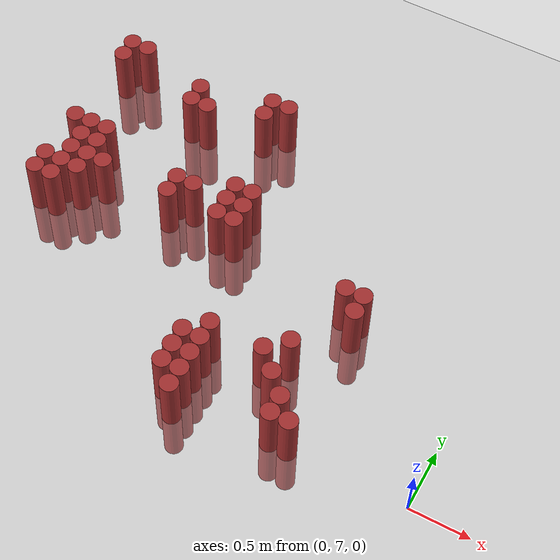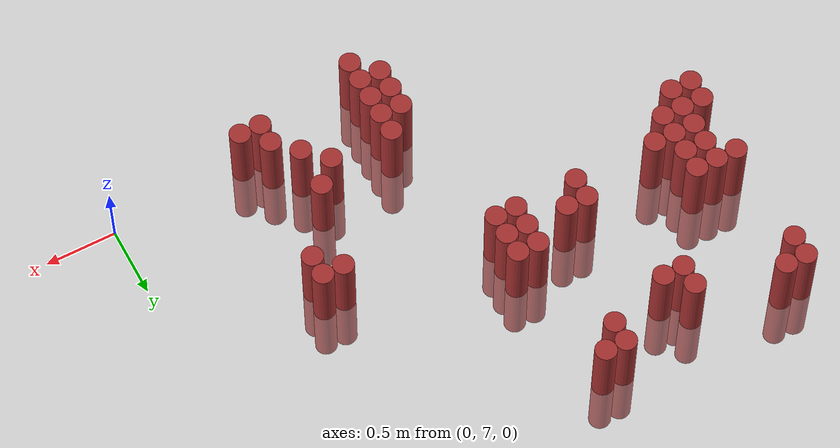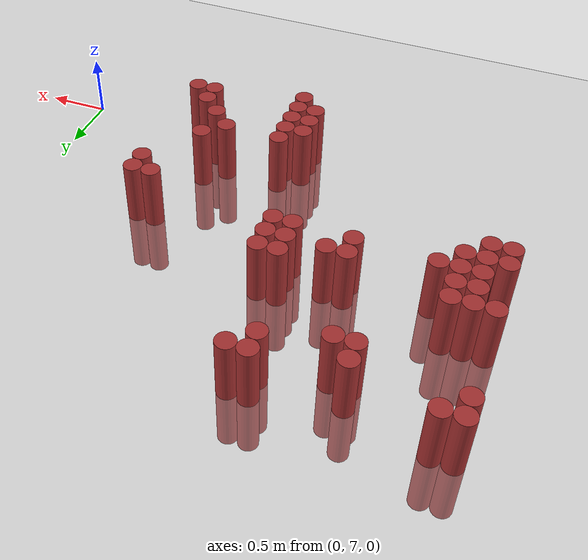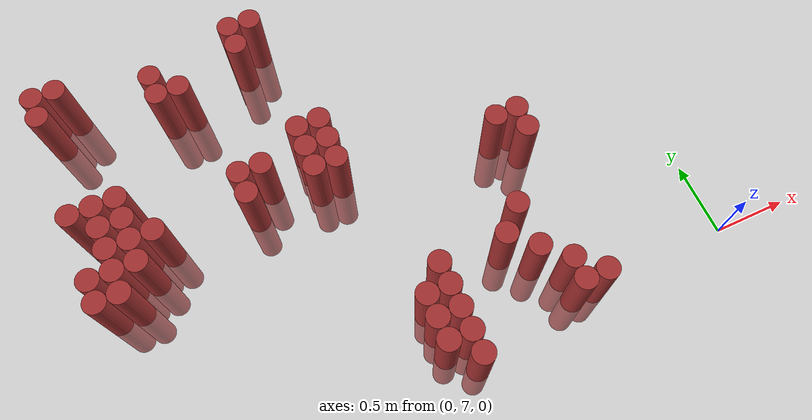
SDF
<sdf version="1.6">
 <world name="default">
  <model name="ground_plane">
   <static>1</static>
   <link name="link">
    <collision name="collision">
     <geometry><plane><normal>0 0 1</normal><size>100 100</size></plane></geometry>
     <surface><friction><ode><mu>100</mu><mu2>50</mu2></ode></friction></surface>
    </collision>
    <visual name="visual">
     <cast_shadows>0</cast_shadows>
     <geometry><plane><normal>0 0 1</normal><size>100 100</size></plane></geometry>
     <material>
      <script><uri>file://media/materials/scripts/gazebo.material</uri><name>Gazebo/Grey</name></script>
     </material>
    </visual>
   </link>
  </model>
  <model name="unit_cylinder_159">
   <static>1</static>
   <pose>-3.825000 8.025000 0.000000 0.000000 0.000000 0.000000</pose>
   <link name="link">
    <inertial>
     <mass>1</mass>
     <inertia><ixx>0.145833</ixx><ixy>0</ixy><ixz>0</ixz><iyy>0.145833</iyy><iyz>0</iyz><izz>0.125</izz></inertia>
    </inertial>
    <collision name="collision">
     <geometry><cylinder><radius>0.075000</radius><length>1</length></cylinder></geometry>
    </collision>
    <visual name="visual">
     <geometry><cylinder><radius>0.075000</radius><length>1</length></cylinder></geometry>
     <material>
      <ambient>0.648000 0.192000 0.192000 1</ambient>
      <diffuse>0.648000 0.192000 0.192000 1</diffuse>
     </material>
     <material>
      <script><name>Gazebo/Grey</name><uri>file://media/materials/scripts/gazebo.material</uri></script>
     </material>
    </visual>
   </link>
  </model>
  <model name="unit_cylinder_160">
   <static>1</static>
   <pose>-3.825000 8.175000 0.000000 0.000000 0.000000 0.000000</pose>
   <link name="link">
    <inertial>
     <mass>1</mass>
     <inertia><ixx>0.145833</ixx><ixy>0</ixy><ixz>0</ixz><iyy>0.145833</iyy><iyz>0</iyz><izz>0.125</izz></inertia>
    </inertial>
    <collision name="collision">
     <geometry><cylinder><radius>0.075000</radius><length>1</length></cylinder></geometry>
    </collision>
    <visual name="visual">
     <geometry><cylinder><radius>0.075000</radius><length>1</length></cylinder></geometry>
     <material>
      <ambient>0.648000 0.192000 0.192000 1</ambient>
      <diffuse>0.648000 0.192000 0.192000 1</diffuse>
     </material>
     <material>
      <script><name>Gazebo/Grey</name><uri>file://media/materials/scripts/gazebo.material</uri></script>
     </material>
    </visual>
   </link>
  </model>
  <model name="unit_cylinder_161">
   <static>1</static>
   <pose>-3.825000 8.625000 0.000000 0.000000 0.000000 0.000000</pose>
   <link name="link">
    <inertial>
     <mass>1</mass>
     <inertia><ixx>0.145833</ixx><ixy>0</ixy><ixz>0</ixz><iyy>0.145833</iyy><iyz>0</iyz><izz>0.125</izz></inertia>
    </inertial>
    <collision name="collision">
     <geometry><cylinder><radius>0.075000</radius><length>1</length></cylinder></geometry>
    </collision>
    <visual name="visual">
     <geometry><cylinder><radius>0.075000</radius><length>1</length></cylinder></geometry>
     <material>
      <ambient>0.648000 0.192000 0.192000 1</ambient>
      <diffuse>0.648000 0.192000 0.192000 1</diffuse>
     </material>
     <material>
      <script><name>Gazebo/Grey</name><uri>file://media/materials/scripts/gazebo.material</uri></script>
     </material>
    </visual>
   </link>
  </model>
  <model name="unit_cylinder_162">
   <static>1</static>
   <pose>-3.825000 9.375000 0.000000 0.000000 0.000000 0.000000</pose>
   <link name="link">
    <inertial>
     <mass>1</mass>
     <inertia><ixx>0.145833</ixx><ixy>0</ixy><ixz>0</ixz><iyy>0.145833</iyy><iyz>0</iyz><izz>0.125</izz></inertia>
    </inertial>
    <collision name="collision">
     <geometry><cylinder><radius>0.075000</radius><length>1</length></cylinder></geometry>
    </collision>
    <visual name="visual">
     <geometry><cylinder><radius>0.075000</radius><length>1</length></cylinder></geometry>
     <material>
      <ambient>0.648000 0.192000 0.192000 1</ambient>
      <diffuse>0.648000 0.192000 0.192000 1</diffuse>
     </material>
     <material>
      <script><name>Gazebo/Grey</name><uri>file://media/materials/scripts/gazebo.material</uri></script>
     </material>
    </visual>
   </link>
  </model>
  <model name="unit_cylinder_163">
   <static>1</static>
   <pose>-3.825000 9.525000 0.000000 0.000000 0.000000 0.000000</pose>
   <link name="link">
    <inertial>
     <mass>1</mass>
     <inertia><ixx>0.145833</ixx><ixy>0</ixy><ixz>0</ixz><iyy>0.145833</iyy><iyz>0</iyz><izz>0.125</izz></inertia>
    </inertial>
    <collision name="collision">
     <geometry><cylinder><radius>0.075000</radius><length>1</length></cylinder></geometry>
    </collision>
    <visual name="visual">
     <geometry><cylinder><radius>0.075000</radius><length>1</length></cylinder></geometry>
     <material>
      <ambient>0.648000 0.192000 0.192000 1</ambient>
      <diffuse>0.648000 0.192000 0.192000 1</diffuse>
     </material>
     <material>
      <script><name>Gazebo/Grey</name><uri>file://media/materials/scripts/gazebo.material</uri></script>
     </material>
    </visual>
   </link>
  </model>
  <model name="unit_cylinder_165">
   <static>1</static>
   <pose>-3.675000 8.025000 0.000000 0.000000 0.000000 0.000000</pose>
   <link name="link">
    <inertial>
     <mass>1</mass>
     <inertia><ixx>0.145833</ixx><ixy>0</ixy><ixz>0</ixz><iyy>0.145833</iyy><iyz>0</iyz><izz>0.125</izz></inertia>
    </inertial>
    <collision name="collision">
     <geometry><cylinder><radius>0.075000</radius><length>1</length></cylinder></geometry>
    </collision>
    <visual name="visual">
     <geometry><cylinder><radius>0.075000</radius><length>1</length></cylinder></geometry>
     <material>
      <ambient>0.648000 0.192000 0.192000 1</ambient>
      <diffuse>0.648000 0.192000 0.192000 1</diffuse>
     </material>
     <material>
      <script><name>Gazebo/Grey</name><uri>file://media/materials/scripts/gazebo.material</uri></script>
     </material>
    </visual>
   </link>
  </model>
  <model name="unit_cylinder_166">
   <static>1</static>
   <pose>-3.675000 8.175000 0.000000 0.000000 0.000000 0.000000</pose>
   <link name="link">
    <inertial>
     <mass>1</mass>
     <inertia><ixx>0.145833</ixx><ixy>0</ixy><ixz>0</ixz><iyy>0.145833</iyy><iyz>0</iyz><izz>0.125</izz></inertia>
    </inertial>
    <collision name="collision">
     <geometry><cylinder><radius>0.075000</radius><length>1</length></cylinder></geometry>
    </collision>
    <visual name="visual">
     <geometry><cylinder><radius>0.075000</radius><length>1</length></cylinder></geometry>
     <material>
      <ambient>0.648000 0.192000 0.192000 1</ambient>
      <diffuse>0.648000 0.192000 0.192000 1</diffuse>
     </material>
     <material>
      <script><name>Gazebo/Grey</name><uri>file://media/materials/scripts/gazebo.material</uri></script>
     </material>
    </visual>
   </link>
  </model>
  <model name="unit_cylinder_167">
   <static>1</static>
   <pose>-3.675000 8.325000 0.000000 0.000000 0.000000 0.000000</pose>
   <link name="link">
    <inertial>
     <mass>1</mass>
     <inertia><ixx>0.145833</ixx><ixy>0</ixy><ixz>0</ixz><iyy>0.145833</iyy><iyz>0</iyz><izz>0.125</izz></inertia>
    </inertial>
    <collision name="collision">
     <geometry><cylinder><radius>0.075000</radius><length>1</length></cylinder></geometry>
    </collision>
    <visual name="visual">
     <geometry><cylinder><radius>0.075000</radius><length>1</length></cylinder></geometry>
     <material>
      <ambient>0.648000 0.192000 0.192000 1</ambient>
      <diffuse>0.648000 0.192000 0.192000 1</diffuse>
     </material>
     <material>
      <script><name>Gazebo/Grey</name><uri>file://media/materials/scripts/gazebo.material</uri></script>
     </material>
    </visual>
   </link>
  </model>
  <model name="unit_cylinder_168">
   <static>1</static>
   <pose>-3.675000 8.475000 0.000000 0.000000 0.000000 0.000000</pose>
   <link name="link">
    <inertial>
     <mass>1</mass>
     <inertia><ixx>0.145833</ixx><ixy>0</ixy><ixz>0</ixz><iyy>0.145833</iyy><iyz>0</iyz><izz>0.125</izz></inertia>
    </inertial>
    <collision name="collision">
     <geometry><cylinder><radius>0.075000</radius><length>1</length></cylinder></geometry>
    </collision>
    <visual name="visual">
     <geometry><cylinder><radius>0.075000</radius><length>1</length></cylinder></geometry>
     <material>
      <ambient>0.648000 0.192000 0.192000 1</ambient>
      <diffuse>0.648000 0.192000 0.192000 1</diffuse>
     </material>
     <material>
      <script><name>Gazebo/Grey</name><uri>file://media/materials/scripts/gazebo.material</uri></script>
     </material>
    </visual>
   </link>
  </model>
  <model name="unit_cylinder_169">
   <static>1</static>
   <pose>-3.675000 8.625000 0.000000 0.000000 0.000000 0.000000</pose>
   <link name="link">
    <inertial>
     <mass>1</mass>
     <inertia><ixx>0.145833</ixx><ixy>0</ixy><ixz>0</ixz><iyy>0.145833</iyy><iyz>0</iyz><izz>0.125</izz></inertia>
    </inertial>
    <collision name="collision">
     <geometry><cylinder><radius>0.075000</radius><length>1</length></cylinder></geometry>
    </collision>
    <visual name="visual">
     <geometry><cylinder><radius>0.075000</radius><length>1</length></cylinder></geometry>
     <material>
      <ambient>0.648000 0.192000 0.192000 1</ambient>
      <diffuse>0.648000 0.192000 0.192000 1</diffuse>
     </material>
     <material>
      <script><name>Gazebo/Grey</name><uri>file://media/materials/scripts/gazebo.material</uri></script>
     </material>
    </visual>
   </link>
  </model>
  <model name="unit_cylinder_170">
   <static>1</static>
   <pose>-3.675000 9.525000 0.000000 0.000000 0.000000 0.000000</pose>
   <link name="link">
    <inertial>
     <mass>1</mass>
     <inertia><ixx>0.145833</ixx><ixy>0</ixy><ixz>0</ixz><iyy>0.145833</iyy><iyz>0</iyz><izz>0.125</izz></inertia>
    </inertial>
    <collision name="collision">
     <geometry><cylinder><radius>0.075000</radius><length>1</length></cylinder></geometry>
    </collision>
    <visual name="visual">
     <geometry><cylinder><radius>0.075000</radius><length>1</length></cylinder></geometry>
     <material>
      <ambient>0.648000 0.192000 0.192000 1</ambient>
      <diffuse>0.648000 0.192000 0.192000 1</diffuse>
     </material>
     <material>
      <script><name>Gazebo/Grey</name><uri>file://media/materials/scripts/gazebo.material</uri></script>
     </material>
    </visual>
   </link>
  </model>
  <model name="unit_cylinder_173">
   <static>1</static>
   <pose>-3.525000 8.175000 0.000000 0.000000 0.000000 0.000000</pose>
   <link name="link">
    <inertial>
     <mass>1</mass>
     <inertia><ixx>0.145833</ixx><ixy>0</ixy><ixz>0</ixz><iyy>0.145833</iyy><iyz>0</iyz><izz>0.125</izz></inertia>
    </inertial>
    <collision name="collision">
     <geometry><cylinder><radius>0.075000</radius><length>1</length></cylinder></geometry>
    </collision>
    <visual name="visual">
     <geometry><cylinder><radius>0.075000</radius><length>1</length></cylinder></geometry>
     <material>
      <ambient>0.648000 0.192000 0.192000 1</ambient>
      <diffuse>0.648000 0.192000 0.192000 1</diffuse>
     </material>
     <material>
      <script><name>Gazebo/Grey</name><uri>file://media/materials/scripts/gazebo.material</uri></script>
     </material>
    </visual>
   </link>
  </model>
  <model name="unit_cylinder_174">
   <static>1</static>
   <pose>-3.525000 8.325000 0.000000 0.000000 0.000000 0.000000</pose>
   <link name="link">
    <inertial>
     <mass>1</mass>
     <inertia><ixx>0.145833</ixx><ixy>0</ixy><ixz>0</ixz><iyy>0.145833</iyy><iyz>0</iyz><izz>0.125</izz></inertia>
    </inertial>
    <collision name="collision">
     <geometry><cylinder><radius>0.075000</radius><length>1</length></cylinder></geometry>
    </collision>
    <visual name="visual">
     <geometry><cylinder><radius>0.075000</radius><length>1</length></cylinder></geometry>
     <material>
      <ambient>0.648000 0.192000 0.192000 1</ambient>
      <diffuse>0.648000 0.192000 0.192000 1</diffuse>
     </material>
     <material>
      <script><name>Gazebo/Grey</name><uri>file://media/materials/scripts/gazebo.material</uri></script>
     </material>
    </visual>
   </link>
  </model>
  <model name="unit_cylinder_175">
   <static>1</static>
   <pose>-3.525000 8.475000 0.000000 0.000000 0.000000 0.000000</pose>
   <link name="link">
    <inertial>
     <mass>1</mass>
     <inertia><ixx>0.145833</ixx><ixy>0</ixy><ixz>0</ixz><iyy>0.145833</iyy><iyz>0</iyz><izz>0.125</izz></inertia>
    </inertial>
    <collision name="collision">
     <geometry><cylinder><radius>0.075000</radius><length>1</length></cylinder></geometry>
    </collision>
    <visual name="visual">
     <geometry><cylinder><radius>0.075000</radius><length>1</length></cylinder></geometry>
     <material>
      <ambient>0.648000 0.192000 0.192000 1</ambient>
      <diffuse>0.648000 0.192000 0.192000 1</diffuse>
     </material>
     <material>
      <script><name>Gazebo/Grey</name><uri>file://media/materials/scripts/gazebo.material</uri></script>
     </material>
    </visual>
   </link>
  </model>
  <model name="unit_cylinder_176">
   <static>1</static>
   <pose>-3.525000 8.625000 0.000000 0.000000 0.000000 0.000000</pose>
   <link name="link">
    <inertial>
     <mass>1</mass>
     <inertia><ixx>0.145833</ixx><ixy>0</ixy><ixz>0</ixz><iyy>0.145833</iyy><iyz>0</iyz><izz>0.125</izz></inertia>
    </inertial>
    <collision name="collision">
     <geometry><cylinder><radius>0.075000</radius><length>1</length></cylinder></geometry>
    </collision>
    <visual name="visual">
     <geometry><cylinder><radius>0.075000</radius><length>1</length></cylinder></geometry>
     <material>
      <ambient>0.648000 0.192000 0.192000 1</ambient>
      <diffuse>0.648000 0.192000 0.192000 1</diffuse>
     </material>
     <material>
      <script><name>Gazebo/Grey</name><uri>file://media/materials/scripts/gazebo.material</uri></script>
     </material>
    </visual>
   </link>
  </model>
  <model name="unit_cylinder_177">
   <static>1</static>
   <pose>-3.375000 8.325000 0.000000 0.000000 0.000000 0.000000</pose>
   <link name="link">
    <inertial>
     <mass>1</mass>
     <inertia><ixx>0.145833</ixx><ixy>0</ixy><ixz>0</ixz><iyy>0.145833</iyy><iyz>0</iyz><izz>0.125</izz></inertia>
    </inertial>
    <collision name="collision">
     <geometry><cylinder><radius>0.075000</radius><length>1</length></cylinder></geometry>
    </collision>
    <visual name="visual">
     <geometry><cylinder><radius>0.075000</radius><length>1</length></cylinder></geometry>
     <material>
      <ambient>0.648000 0.192000 0.192000 1</ambient>
      <diffuse>0.648000 0.192000 0.192000 1</diffuse>
     </material>
     <material>
      <script><name>Gazebo/Grey</name><uri>file://media/materials/scripts/gazebo.material</uri></script>
     </material>
    </visual>
   </link>
  </model>
  <model name="unit_cylinder_178">
   <static>1</static>
   <pose>-3.075000 9.225000 0.000000 0.000000 0.000000 0.000000</pose>
   <link name="link">
    <inertial>
     <mass>1</mass>
     <inertia><ixx>0.145833</ixx><ixy>0</ixy><ixz>0</ixz><iyy>0.145833</iyy><iyz>0</iyz><izz>0.125</izz></inertia>
    </inertial>
    <collision name="collision">
     <geometry><cylinder><radius>0.075000</radius><length>1</length></cylinder></geometry>
    </collision>
    <visual name="visual">
     <geometry><cylinder><radius>0.075000</radius><length>1</length></cylinder></geometry>
     <material>
      <ambient>0.648000 0.192000 0.192000 1</ambient>
      <diffuse>0.648000 0.192000 0.192000 1</diffuse>
     </material>
     <material>
      <script><name>Gazebo/Grey</name><uri>file://media/materials/scripts/gazebo.material</uri></script>
     </material>
    </visual>
   </link>
  </model>
  <model name="unit_cylinder_179">
   <static>1</static>
   <pose>-3.075000 9.375000 0.000000 0.000000 0.000000 0.000000</pose>
   <link name="link">
    <inertial>
     <mass>1</mass>
     <inertia><ixx>0.145833</ixx><ixy>0</ixy><ixz>0</ixz><iyy>0.145833</iyy><iyz>0</iyz><izz>0.125</izz></inertia>
    </inertial>
    <collision name="collision">
     <geometry><cylinder><radius>0.075000</radius><length>1</length></cylinder></geometry>
    </collision>
    <visual name="visual">
     <geometry><cylinder><radius>0.075000</radius><length>1</length></cylinder></geometry>
     <material>
      <ambient>0.648000 0.192000 0.192000 1</ambient>
      <diffuse>0.648000 0.192000 0.192000 1</diffuse>
     </material>
     <material>
      <script><name>Gazebo/Grey</name><uri>file://media/materials/scripts/gazebo.material</uri></script>
     </material>
    </visual>
   </link>
  </model>
  <model name="unit_cylinder_180">
   <static>1</static>
   <pose>-2.925000 9.225000 0.000000 0.000000 0.000000 0.000000</pose>
   <link name="link">
    <inertial>
     <mass>1</mass>
     <inertia><ixx>0.145833</ixx><ixy>0</ixy><ixz>0</ixz><iyy>0.145833</iyy><iyz>0</iyz><izz>0.125</izz></inertia>
    </inertial>
    <collision name="collision">
     <geometry><cylinder><radius>0.075000</radius><length>1</length></cylinder></geometry>
    </collision>
    <visual name="visual">
     <geometry><cylinder><radius>0.075000</radius><length>1</length></cylinder></geometry>
     <material>
      <ambient>0.648000 0.192000 0.192000 1</ambient>
      <diffuse>0.648000 0.192000 0.192000 1</diffuse>
     </material>
     <material>
      <script><name>Gazebo/Grey</name><uri>file://media/materials/scripts/gazebo.material</uri></script>
     </material>
    </visual>
   </link>
  </model>
  <model name="unit_cylinder_181">
   <static>1</static>
   <pose>-2.775000 8.325000 0.000000 0.000000 0.000000 0.000000</pose>
   <link name="link">
    <inertial>
     <mass>1</mass>
     <inertia><ixx>0.145833</ixx><ixy>0</ixy><ixz>0</ixz><iyy>0.145833</iyy><iyz>0</iyz><izz>0.125</izz></inertia>
    </inertial>
    <collision name="collision">
     <geometry><cylinder><radius>0.075000</radius><length>1</length></cylinder></geometry>
    </collision>
    <visual name="visual">
     <geometry><cylinder><radius>0.075000</radius><length>1</length></cylinder></geometry>
     <material>
      <ambient>0.648000 0.192000 0.192000 1</ambient>
      <diffuse>0.648000 0.192000 0.192000 1</diffuse>
     </material>
     <material>
      <script><name>Gazebo/Grey</name><uri>file://media/materials/scripts/gazebo.material</uri></script>
     </material>
    </visual>
   </link>
  </model>
  <model name="unit_cylinder_182">
   <static>1</static>
   <pose>-2.775000 8.475000 0.000000 0.000000 0.000000 0.000000</pose>
   <link name="link">
    <inertial>
     <mass>1</mass>
     <inertia><ixx>0.145833</ixx><ixy>0</ixy><ixz>0</ixz><iyy>0.145833</iyy><iyz>0</iyz><izz>0.125</izz></inertia>
    </inertial>
    <collision name="collision">
     <geometry><cylinder><radius>0.075000</radius><length>1</length></cylinder></geometry>
    </collision>
    <visual name="visual">
     <geometry><cylinder><radius>0.075000</radius><length>1</length></cylinder></geometry>
     <material>
      <ambient>0.648000 0.192000 0.192000 1</ambient>
      <diffuse>0.648000 0.192000 0.192000 1</diffuse>
     </material>
     <material>
      <script><name>Gazebo/Grey</name><uri>file://media/materials/scripts/gazebo.material</uri></script>
     </material>
    </visual>
   </link>
  </model>
  <model name="unit_cylinder_183">
   <static>1</static>
   <pose>-2.625000 8.475000 0.000000 0.000000 0.000000 0.000000</pose>
   <link name="link">
    <inertial>
     <mass>1</mass>
     <inertia><ixx>0.145833</ixx><ixy>0</ixy><ixz>0</ixz><iyy>0.145833</iyy><iyz>0</iyz><izz>0.125</izz></inertia>
    </inertial>
    <collision name="collision">
     <geometry><cylinder><radius>0.075000</radius><length>1</length></cylinder></geometry>
    </collision>
    <visual name="visual">
     <geometry><cylinder><radius>0.075000</radius><length>1</length></cylinder></geometry>
     <material>
      <ambient>0.648000 0.192000 0.192000 1</ambient>
      <diffuse>0.648000 0.192000 0.192000 1</diffuse>
     </material>
     <material>
      <script><name>Gazebo/Grey</name><uri>file://media/materials/scripts/gazebo.material</uri></script>
     </material>
    </visual>
   </link>
  </model>
  <model name="unit_cylinder_184">
   <static>1</static>
   <pose>-2.475000 9.375000 0.000000 0.000000 0.000000 0.000000</pose>
   <link name="link">
    <inertial>
     <mass>1</mass>
     <inertia><ixx>0.145833</ixx><ixy>0</ixy><ixz>0</ixz><iyy>0.145833</iyy><iyz>0</iyz><izz>0.125</izz></inertia>
    </inertial>
    <collision name="collision">
     <geometry><cylinder><radius>0.075000</radius><length>1</length></cylinder></geometry>
    </collision>
    <visual name="visual">
     <geometry><cylinder><radius>0.075000</radius><length>1</length></cylinder></geometry>
     <material>
      <ambient>0.648000 0.192000 0.192000 1</ambient>
      <diffuse>0.648000 0.192000 0.192000 1</diffuse>
     </material>
     <material>
      <script><name>Gazebo/Grey</name><uri>file://media/materials/scripts/gazebo.material</uri></script>
     </material>
    </visual>
   </link>
  </model>
  <model name="unit_cylinder_185">
   <static>1</static>
   <pose>-2.475000 9.525000 0.000000 0.000000 0.000000 0.000000</pose>
   <link name="link">
    <inertial>
     <mass>1</mass>
     <inertia><ixx>0.145833</ixx><ixy>0</ixy><ixz>0</ixz><iyy>0.145833</iyy><iyz>0</iyz><izz>0.125</izz></inertia>
    </inertial>
    <collision name="collision">
     <geometry><cylinder><radius>0.075000</radius><length>1</length></cylinder></geometry>
    </collision>
    <visual name="visual">
     <geometry><cylinder><radius>0.075000</radius><length>1</length></cylinder></geometry>
     <material>
      <ambient>0.648000 0.192000 0.192000 1</ambient>
      <diffuse>0.648000 0.192000 0.192000 1</diffuse>
     </material>
     <material>
      <script><name>Gazebo/Grey</name><uri>file://media/materials/scripts/gazebo.material</uri></script>
     </material>
    </visual>
   </link>
  </model>
  <model name="unit_cylinder_186">
   <static>1</static>
   <pose>-2.325000 8.325000 0.000000 0.000000 0.000000 0.000000</pose>
   <link name="link">
    <inertial>
     <mass>1</mass>
     <inertia><ixx>0.145833</ixx><ixy>0</ixy><ixz>0</ixz><iyy>0.145833</iyy><iyz>0</iyz><izz>0.125</izz></inertia>
    </inertial>
    <collision name="collision">
     <geometry><cylinder><radius>0.075000</radius><length>1</length></cylinder></geometry>
    </collision>
    <visual name="visual">
     <geometry><cylinder><radius>0.075000</radius><length>1</length></cylinder></geometry>
     <material>
      <ambient>0.648000 0.192000 0.192000 1</ambient>
      <diffuse>0.648000 0.192000 0.192000 1</diffuse>
     </material>
     <material>
      <script><name>Gazebo/Grey</name><uri>file://media/materials/scripts/gazebo.material</uri></script>
     </material>
    </visual>
   </link>
  </model>
  <model name="unit_cylinder_187">
   <static>1</static>
   <pose>-2.325000 8.475000 0.000000 0.000000 0.000000 0.000000</pose>
   <link name="link">
    <inertial>
     <mass>1</mass>
     <inertia><ixx>0.145833</ixx><ixy>0</ixy><ixz>0</ixz><iyy>0.145833</iyy><iyz>0</iyz><izz>0.125</izz></inertia>
    </inertial>
    <collision name="collision">
     <geometry><cylinder><radius>0.075000</radius><length>1</length></cylinder></geometry>
    </collision>
    <visual name="visual">
     <geometry><cylinder><radius>0.075000</radius><length>1</length></cylinder></geometry>
     <material>
      <ambient>0.648000 0.192000 0.192000 1</ambient>
      <diffuse>0.648000 0.192000 0.192000 1</diffuse>
     </material>
     <material>
      <script><name>Gazebo/Grey</name><uri>file://media/materials/scripts/gazebo.material</uri></script>
     </material>
    </visual>
   </link>
  </model>
  <model name="unit_cylinder_188">
   <static>1</static>
   <pose>-2.325000 8.625000 0.000000 0.000000 0.000000 0.000000</pose>
   <link name="link">
    <inertial>
     <mass>1</mass>
     <inertia><ixx>0.145833</ixx><ixy>0</ixy><ixz>0</ixz><iyy>0.145833</iyy><iyz>0</iyz><izz>0.125</izz></inertia>
    </inertial>
    <collision name="collision">
     <geometry><cylinder><radius>0.075000</radius><length>1</length></cylinder></geometry>
    </collision>
    <visual name="visual">
     <geometry><cylinder><radius>0.075000</radius><length>1</length></cylinder></geometry>
     <material>
      <ambient>0.648000 0.192000 0.192000 1</ambient>
      <diffuse>0.648000 0.192000 0.192000 1</diffuse>
     </material>
     <material>
      <script><name>Gazebo/Grey</name><uri>file://media/materials/scripts/gazebo.material</uri></script>
     </material>
    </visual>
   </link>
  </model>
  <model name="unit_cylinder_189">
   <static>1</static>
   <pose>-2.325000 9.525000 0.000000 0.000000 0.000000 0.000000</pose>
   <link name="link">
    <inertial>
     <mass>1</mass>
     <inertia><ixx>0.145833</ixx><ixy>0</ixy><ixz>0</ixz><iyy>0.145833</iyy><iyz>0</iyz><izz>0.125</izz></inertia>
    </inertial>
    <collision name="collision">
     <geometry><cylinder><radius>0.075000</radius><length>1</length></cylinder></geometry>
    </collision>
    <visual name="visual">
     <geometry><cylinder><radius>0.075000</radius><length>1</length></cylinder></geometry>
     <material>
      <ambient>0.648000 0.192000 0.192000 1</ambient>
      <diffuse>0.648000 0.192000 0.192000 1</diffuse>
     </material>
     <material>
      <script><name>Gazebo/Grey</name><uri>file://media/materials/scripts/gazebo.material</uri></script>
     </material>
    </visual>
   </link>
  </model>
  <model name="unit_cylinder_190">
   <static>1</static>
   <pose>-2.175000 8.325000 0.000000 0.000000 0.000000 0.000000</pose>
   <link name="link">
    <inertial>
     <mass>1</mass>
     <inertia><ixx>0.145833</ixx><ixy>0</ixy><ixz>0</ixz><iyy>0.145833</iyy><iyz>0</iyz><izz>0.125</izz></inertia>
    </inertial>
    <collision name="collision">
     <geometry><cylinder><radius>0.075000</radius><length>1</length></cylinder></geometry>
    </collision>
    <visual name="visual">
     <geometry><cylinder><radius>0.075000</radius><length>1</length></cylinder></geometry>
     <material>
      <ambient>0.648000 0.192000 0.192000 1</ambient>
      <diffuse>0.648000 0.192000 0.192000 1</diffuse>
     </material>
     <material>
      <script><name>Gazebo/Grey</name><uri>file://media/materials/scripts/gazebo.material</uri></script>
     </material>
    </visual>
   </link>
  </model>
  <model name="unit_cylinder_191">
   <static>1</static>
   <pose>-2.175000 8.475000 0.000000 0.000000 0.000000 0.000000</pose>
   <link name="link">
    <inertial>
     <mass>1</mass>
     <inertia><ixx>0.145833</ixx><ixy>0</ixy><ixz>0</ixz><iyy>0.145833</iyy><iyz>0</iyz><izz>0.125</izz></inertia>
    </inertial>
    <collision name="collision">
     <geometry><cylinder><radius>0.075000</radius><length>1</length></cylinder></geometry>
    </collision>
    <visual name="visual">
     <geometry><cylinder><radius>0.075000</radius><length>1</length></cylinder></geometry>
     <material>
      <ambient>0.648000 0.192000 0.192000 1</ambient>
      <diffuse>0.648000 0.192000 0.192000 1</diffuse>
     </material>
     <material>
      <script><name>Gazebo/Grey</name><uri>file://media/materials/scripts/gazebo.material</uri></script>
     </material>
    </visual>
   </link>
  </model>
  <model name="unit_cylinder_192">
   <static>1</static>
   <pose>-2.175000 8.625000 0.000000 0.000000 0.000000 0.000000</pose>
   <link name="link">
    <inertial>
     <mass>1</mass>
     <inertia><ixx>0.145833</ixx><ixy>0</ixy><ixz>0</ixz><iyy>0.145833</iyy><iyz>0</iyz><izz>0.125</izz></inertia>
    </inertial>
    <collision name="collision">
     <geometry><cylinder><radius>0.075000</radius><length>1</length></cylinder></geometry>
    </collision>
    <visual name="visual">
     <geometry><cylinder><radius>0.075000</radius><length>1</length></cylinder></geometry>
     <material>
      <ambient>0.648000 0.192000 0.192000 1</ambient>
      <diffuse>0.648000 0.192000 0.192000 1</diffuse>
     </material>
     <material>
      <script><name>Gazebo/Grey</name><uri>file://media/materials/scripts/gazebo.material</uri></script>
     </material>
    </visual>
   </link>
  </model>
  <model name="unit_cylinder_193">
   <static>1</static>
   <pose>-2.025000 6.975000 0.000000 0.000000 0.000000 0.000000</pose>
   <link name="link">
    <inertial>
     <mass>1</mass>
     <inertia><ixx>0.145833</ixx><ixy>0</ixy><ixz>0</ixz><iyy>0.145833</iyy><iyz>0</iyz><izz>0.125</izz></inertia>
    </inertial>
    <collision name="collision">
     <geometry><cylinder><radius>0.075000</radius><length>1</length></cylinder></geometry>
    </collision>
    <visual name="visual">
     <geometry><cylinder><radius>0.075000</radius><length>1</length></cylinder></geometry>
     <material>
      <ambient>0.648000 0.192000 0.192000 1</ambient>
      <diffuse>0.648000 0.192000 0.192000 1</diffuse>
     </material>
     <material>
      <script><name>Gazebo/Grey</name><uri>file://media/materials/scripts/gazebo.material</uri></script>
     </material>
    </visual>
   </link>
  </model>
  <model name="unit_cylinder_194">
   <static>1</static>
   <pose>-2.025000 7.125000 0.000000 0.000000 0.000000 0.000000</pose>
   <link name="link">
    <inertial>
     <mass>1</mass>
     <inertia><ixx>0.145833</ixx><ixy>0</ixy><ixz>0</ixz><iyy>0.145833</iyy><iyz>0</iyz><izz>0.125</izz></inertia>
    </inertial>
    <collision name="collision">
     <geometry><cylinder><radius>0.075000</radius><length>1</length></cylinder></geometry>
    </collision>
    <visual name="visual">
     <geometry><cylinder><radius>0.075000</radius><length>1</length></cylinder></geometry>
     <material>
      <ambient>0.648000 0.192000 0.192000 1</ambient>
      <diffuse>0.648000 0.192000 0.192000 1</diffuse>
     </material>
     <material>
      <script><name>Gazebo/Grey</name><uri>file://media/materials/scripts/gazebo.material</uri></script>
     </material>
    </visual>
   </link>
  </model>
  <model name="unit_cylinder_195">
   <static>1</static>
   <pose>-2.025000 7.275000 0.000000 0.000000 0.000000 0.000000</pose>
   <link name="link">
    <inertial>
     <mass>1</mass>
     <inertia><ixx>0.145833</ixx><ixy>0</ixy><ixz>0</ixz><iyy>0.145833</iyy><iyz>0</iyz><izz>0.125</izz></inertia>
    </inertial>
    <collision name="collision">
     <geometry><cylinder><radius>0.075000</radius><length>1</length></cylinder></geometry>
    </collision>
    <visual name="visual">
     <geometry><cylinder><radius>0.075000</radius><length>1</length></cylinder></geometry>
     <material>
      <ambient>0.648000 0.192000 0.192000 1</ambient>
      <diffuse>0.648000 0.192000 0.192000 1</diffuse>
     </material>
     <material>
      <script><name>Gazebo/Grey</name><uri>file://media/materials/scripts/gazebo.material</uri></script>
     </material>
    </visual>
   </link>
  </model>
  <model name="unit_cylinder_196">
   <static>1</static>
   <pose>-1.875000 6.825000 0.000000 0.000000 0.000000 0.000000</pose>
   <link name="link">
    <inertial>
     <mass>1</mass>
     <inertia><ixx>0.145833</ixx><ixy>0</ixy><ixz>0</ixz><iyy>0.145833</iyy><iyz>0</iyz><izz>0.125</izz></inertia>
    </inertial>
    <collision name="collision">
     <geometry><cylinder><radius>0.075000</radius><length>1</length></cylinder></geometry>
    </collision>
    <visual name="visual">
     <geometry><cylinder><radius>0.075000</radius><length>1</length></cylinder></geometry>
     <material>
      <ambient>0.648000 0.192000 0.192000 1</ambient>
      <diffuse>0.648000 0.192000 0.192000 1</diffuse>
     </material>
     <material>
      <script><name>Gazebo/Grey</name><uri>file://media/materials/scripts/gazebo.material</uri></script>
     </material>
    </visual>
   </link>
  </model>
  <model name="unit_cylinder_197">
   <static>1</static>
   <pose>-1.875000 6.975000 0.000000 0.000000 0.000000 0.000000</pose>
   <link name="link">
    <inertial>
     <mass>1</mass>
     <inertia><ixx>0.145833</ixx><ixy>0</ixy><ixz>0</ixz><iyy>0.145833</iyy><iyz>0</iyz><izz>0.125</izz></inertia>
    </inertial>
    <collision name="collision">
     <geometry><cylinder><radius>0.075000</radius><length>1</length></cylinder></geometry>
    </collision>
    <visual name="visual">
     <geometry><cylinder><radius>0.075000</radius><length>1</length></cylinder></geometry>
     <material>
      <ambient>0.648000 0.192000 0.192000 1</ambient>
      <diffuse>0.648000 0.192000 0.192000 1</diffuse>
     </material>
     <material>
      <script><name>Gazebo/Grey</name><uri>file://media/materials/scripts/gazebo.material</uri></script>
     </material>
    </visual>
   </link>
  </model>
  <model name="unit_cylinder_198">
   <static>1</static>
   <pose>-1.875000 7.125000 0.000000 0.000000 0.000000 0.000000</pose>
   <link name="link">
    <inertial>
     <mass>1</mass>
     <inertia><ixx>0.145833</ixx><ixy>0</ixy><ixz>0</ixz><iyy>0.145833</iyy><iyz>0</iyz><izz>0.125</izz></inertia>
    </inertial>
    <collision name="collision">
     <geometry><cylinder><radius>0.075000</radius><length>1</length></cylinder></geometry>
    </collision>
    <visual name="visual">
     <geometry><cylinder><radius>0.075000</radius><length>1</length></cylinder></geometry>
     <material>
      <ambient>0.648000 0.192000 0.192000 1</ambient>
      <diffuse>0.648000 0.192000 0.192000 1</diffuse>
     </material>
     <material>
      <script><name>Gazebo/Grey</name><uri>file://media/materials/scripts/gazebo.material</uri></script>
     </material>
    </visual>
   </link>
  </model>
  <model name="unit_cylinder_199">
   <static>1</static>
   <pose>-1.875000 7.275000 0.000000 0.000000 0.000000 0.000000</pose>
   <link name="link">
    <inertial>
     <mass>1</mass>
     <inertia><ixx>0.145833</ixx><ixy>0</ixy><ixz>0</ixz><iyy>0.145833</iyy><iyz>0</iyz><izz>0.125</izz></inertia>
    </inertial>
    <collision name="collision">
     <geometry><cylinder><radius>0.075000</radius><length>1</length></cylinder></geometry>
    </collision>
    <visual name="visual">
     <geometry><cylinder><radius>0.075000</radius><length>1</length></cylinder></geometry>
     <material>
      <ambient>0.648000 0.192000 0.192000 1</ambient>
      <diffuse>0.648000 0.192000 0.192000 1</diffuse>
     </material>
     <material>
      <script><name>Gazebo/Grey</name><uri>file://media/materials/scripts/gazebo.material</uri></script>
     </material>
    </visual>
   </link>
  </model>
  <model name="unit_cylinder_200">
   <static>1</static>
   <pose>-1.875000 7.425000 0.000000 0.000000 0.000000 0.000000</pose>
   <link name="link">
    <inertial>
     <mass>1</mass>
     <inertia><ixx>0.145833</ixx><ixy>0</ixy><ixz>0</ixz><iyy>0.145833</iyy><iyz>0</iyz><izz>0.125</izz></inertia>
    </inertial>
    <collision name="collision">
     <geometry><cylinder><radius>0.075000</radius><length>1</length></cylinder></geometry>
    </collision>
    <visual name="visual">
     <geometry><cylinder><radius>0.075000</radius><length>1</length></cylinder></geometry>
     <material>
      <ambient>0.648000 0.192000 0.192000 1</ambient>
      <diffuse>0.648000 0.192000 0.192000 1</diffuse>
     </material>
     <material>
      <script><name>Gazebo/Grey</name><uri>file://media/materials/scripts/gazebo.material</uri></script>
     </material>
    </visual>
   </link>
  </model>
  <model name="unit_cylinder_204">
   <static>1</static>
   <pose>-1.425000 7.425000 0.000000 0.000000 0.000000 0.000000</pose>
   <link name="link">
    <inertial>
     <mass>1</mass>
     <inertia><ixx>0.145833</ixx><ixy>0</ixy><ixz>0</ixz><iyy>0.145833</iyy><iyz>0</iyz><izz>0.125</izz></inertia>
    </inertial>
    <collision name="collision">
     <geometry><cylinder><radius>0.075000</radius><length>1</length></cylinder></geometry>
    </collision>
    <visual name="visual">
     <geometry><cylinder><radius>0.075000</radius><length>1</length></cylinder></geometry>
     <material>
      <ambient>0.648000 0.192000 0.192000 1</ambient>
      <diffuse>0.648000 0.192000 0.192000 1</diffuse>
     </material>
     <material>
      <script><name>Gazebo/Grey</name><uri>file://media/materials/scripts/gazebo.material</uri></script>
     </material>
    </visual>
   </link>
  </model>
  <model name="unit_cylinder_206">
   <static>1</static>
   <pose>-1.275000 7.275000 0.000000 0.000000 0.000000 0.000000</pose>
   <link name="link">
    <inertial>
     <mass>1</mass>
     <inertia><ixx>0.145833</ixx><ixy>0</ixy><ixz>0</ixz><iyy>0.145833</iyy><iyz>0</iyz><izz>0.125</izz></inertia>
    </inertial>
    <collision name="collision">
     <geometry><cylinder><radius>0.075000</radius><length>1</length></cylinder></geometry>
    </collision>
    <visual name="visual">
     <geometry><cylinder><radius>0.075000</radius><length>1</length></cylinder></geometry>
     <material>
      <ambient>0.648000 0.192000 0.192000 1</ambient>
      <diffuse>0.648000 0.192000 0.192000 1</diffuse>
     </material>
     <material>
      <script><name>Gazebo/Grey</name><uri>file://media/materials/scripts/gazebo.material</uri></script>
     </material>
    </visual>
   </link>
  </model>
  <model name="unit_cylinder_207">
   <static>1</static>
   <pose>-1.275000 7.575000 0.000000 0.000000 0.000000 0.000000</pose>
   <link name="link">
    <inertial>
     <mass>1</mass>
     <inertia><ixx>0.145833</ixx><ixy>0</ixy><ixz>0</ixz><iyy>0.145833</iyy><iyz>0</iyz><izz>0.125</izz></inertia>
    </inertial>
    <collision name="collision">
     <geometry><cylinder><radius>0.075000</radius><length>1</length></cylinder></geometry>
    </collision>
    <visual name="visual">
     <geometry><cylinder><radius>0.075000</radius><length>1</length></cylinder></geometry>
     <material>
      <ambient>0.648000 0.192000 0.192000 1</ambient>
      <diffuse>0.648000 0.192000 0.192000 1</diffuse>
     </material>
     <material>
      <script><name>Gazebo/Grey</name><uri>file://media/materials/scripts/gazebo.material</uri></script>
     </material>
    </visual>
   </link>
  </model>
  <model name="unit_cylinder_209">
   <static>1</static>
   <pose>-1.125000 6.975000 0.000000 0.000000 0.000000 0.000000</pose>
   <link name="link">
    <inertial>
     <mass>1</mass>
     <inertia><ixx>0.145833</ixx><ixy>0</ixy><ixz>0</ixz><iyy>0.145833</iyy><iyz>0</iyz><izz>0.125</izz></inertia>
    </inertial>
    <collision name="collision">
     <geometry><cylinder><radius>0.075000</radius><length>1</length></cylinder></geometry>
    </collision>
    <visual name="visual">
     <geometry><cylinder><radius>0.075000</radius><length>1</length></cylinder></geometry>
     <material>
      <ambient>0.648000 0.192000 0.192000 1</ambient>
      <diffuse>0.648000 0.192000 0.192000 1</diffuse>
     </material>
     <material>
      <script><name>Gazebo/Grey</name><uri>file://media/materials/scripts/gazebo.material</uri></script>
     </material>
    </visual>
   </link>
  </model>
  <model name="unit_cylinder_210">
   <static>1</static>
   <pose>-1.125000 7.125000 0.000000 0.000000 0.000000 0.000000</pose>
   <link name="link">
    <inertial>
     <mass>1</mass>
     <inertia><ixx>0.145833</ixx><ixy>0</ixy><ixz>0</ixz><iyy>0.145833</iyy><iyz>0</iyz><izz>0.125</izz></inertia>
    </inertial>
    <collision name="collision">
     <geometry><cylinder><radius>0.075000</radius><length>1</length></cylinder></geometry>
    </collision>
    <visual name="visual">
     <geometry><cylinder><radius>0.075000</radius><length>1</length></cylinder></geometry>
     <material>
      <ambient>0.648000 0.192000 0.192000 1</ambient>
      <diffuse>0.648000 0.192000 0.192000 1</diffuse>
     </material>
     <material>
      <script><name>Gazebo/Grey</name><uri>file://media/materials/scripts/gazebo.material</uri></script>
     </material>
    </visual>
   </link>
  </model>
  <model name="unit_cylinder_211">
   <static>1</static>
   <pose>-1.125000 8.175000 0.000000 0.000000 0.000000 0.000000</pose>
   <link name="link">
    <inertial>
     <mass>1</mass>
     <inertia><ixx>0.145833</ixx><ixy>0</ixy><ixz>0</ixz><iyy>0.145833</iyy><iyz>0</iyz><izz>0.125</izz></inertia>
    </inertial>
    <collision name="collision">
     <geometry><cylinder><radius>0.075000</radius><length>1</length></cylinder></geometry>
    </collision>
    <visual name="visual">
     <geometry><cylinder><radius>0.075000</radius><length>1</length></cylinder></geometry>
     <material>
      <ambient>0.648000 0.192000 0.192000 1</ambient>
      <diffuse>0.648000 0.192000 0.192000 1</diffuse>
     </material>
     <material>
      <script><name>Gazebo/Grey</name><uri>file://media/materials/scripts/gazebo.material</uri></script>
     </material>
    </visual>
   </link>
  </model>
  <model name="unit_cylinder_213">
   <static>1</static>
   <pose>-0.975000 6.975000 0.000000 0.000000 0.000000 0.000000</pose>
   <link name="link">
    <inertial>
     <mass>1</mass>
     <inertia><ixx>0.145833</ixx><ixy>0</ixy><ixz>0</ixz><iyy>0.145833</iyy><iyz>0</iyz><izz>0.125</izz></inertia>
    </inertial>
    <collision name="collision">
     <geometry><cylinder><radius>0.075000</radius><length>1</length></cylinder></geometry>
    </collision>
    <visual name="visual">
     <geometry><cylinder><radius>0.075000</radius><length>1</length></cylinder></geometry>
     <material>
      <ambient>0.648000 0.192000 0.192000 1</ambient>
      <diffuse>0.648000 0.192000 0.192000 1</diffuse>
     </material>
     <material>
      <script><name>Gazebo/Grey</name><uri>file://media/materials/scripts/gazebo.material</uri></script>
     </material>
    </visual>
   </link>
  </model>
  <model name="unit_cylinder_214">
   <static>1</static>
   <pose>-0.975000 8.025000 0.000000 0.000000 0.000000 0.000000</pose>
   <link name="link">
    <inertial>
     <mass>1</mass>
     <inertia><ixx>0.145833</ixx><ixy>0</ixy><ixz>0</ixz><iyy>0.145833</iyy><iyz>0</iyz><izz>0.125</izz></inertia>
    </inertial>
    <collision name="collision">
     <geometry><cylinder><radius>0.075000</radius><length>1</length></cylinder></geometry>
    </collision>
    <visual name="visual">
     <geometry><cylinder><radius>0.075000</radius><length>1</length></cylinder></geometry>
     <material>
      <ambient>0.648000 0.192000 0.192000 1</ambient>
      <diffuse>0.648000 0.192000 0.192000 1</diffuse>
     </material>
     <material>
      <script><name>Gazebo/Grey</name><uri>file://media/materials/scripts/gazebo.material</uri></script>
     </material>
    </visual>
   </link>
  </model>
  <model name="unit_cylinder_215">
   <static>1</static>
   <pose>-0.975000 8.175000 0.000000 0.000000 0.000000 0.000000</pose>
   <link name="link">
    <inertial>
     <mass>1</mass>
     <inertia><ixx>0.145833</ixx><ixy>0</ixy><ixz>0</ixz><iyy>0.145833</iyy><iyz>0</iyz><izz>0.125</izz></inertia>
    </inertial>
    <collision name="collision">
     <geometry><cylinder><radius>0.075000</radius><length>1</length></cylinder></geometry>
    </collision>
    <visual name="visual">
     <geometry><cylinder><radius>0.075000</radius><length>1</length></cylinder></geometry>
     <material>
      <ambient>0.648000 0.192000 0.192000 1</ambient>
      <diffuse>0.648000 0.192000 0.192000 1</diffuse>
     </material>
     <material>
      <script><name>Gazebo/Grey</name><uri>file://media/materials/scripts/gazebo.material</uri></script>
     </material>
    </visual>
   </link>
  </model>
 </world>
</sdf>
